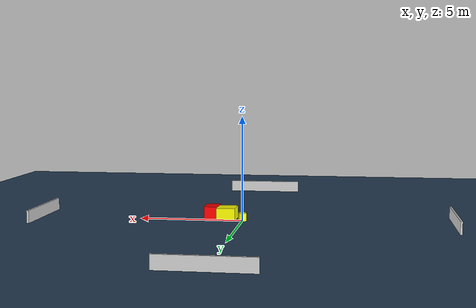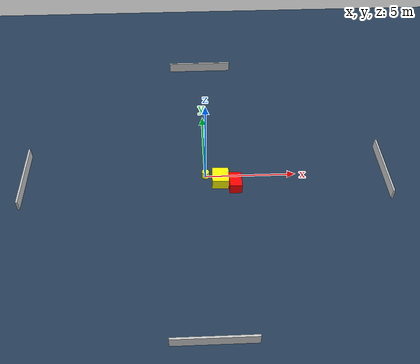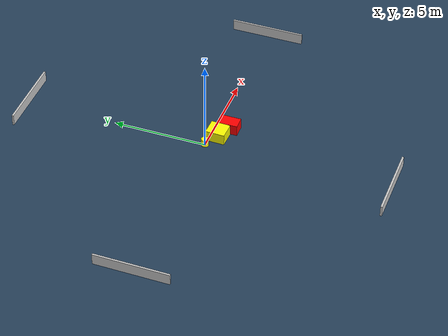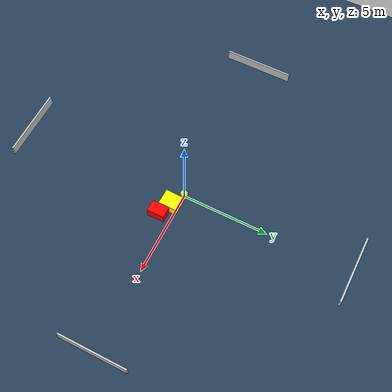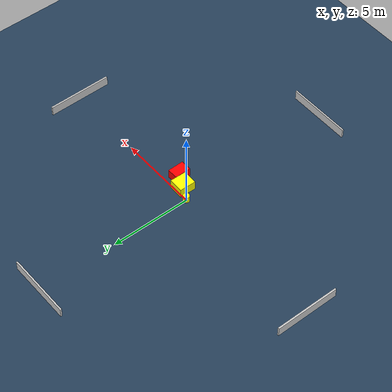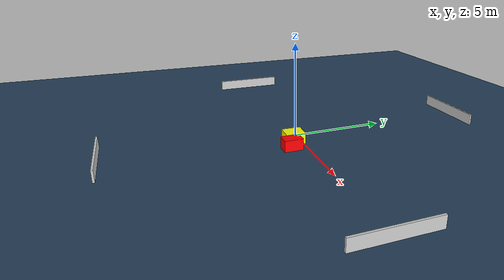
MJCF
<?xml version="1.0" ?>
<mujoco model="generated_environment">
  <option timestep="0.01" integrator="RK4" cone="elliptic"/>
  <default>
    <geom density="1"/>
  </default>
  <asset>
    <texture builtin="gradient" height="3072" name="skybox" rgb1="0.3 0.5 0.7" rgb2="0 0 0" type="skybox" width="512"/>
    <texture builtin="checker" height="300" name="groundplane" rgb1="0.2 0.3 0.4" rgb2="0.1 0.2 0.3" type="2d" width="300"/>
    <material name="groundplane" reflectance="0.2" texrepeat="5 5" texture="groundplane"/>
  </asset>
  <worldbody>
    <light dir="0 0 -1" directional="true" pos="0 0 1.5"/>
    <geom condim="3" friction="0.5 0.005 0.001" material="groundplane" name="floor" pos="0 0 0" size="0 0 0.05" type="plane"/>
    <body name="walls">
      <geom name="wall_1" condim="4" pos="-10.0 0.0 0.3" rgba="0.800000011920929 0.800000011920929 0.800000011920929 1.0" size="0.05 2.0 0.3" type="box"/>
      <geom name="wall_2" condim="4" pos="10.0 0.0 0.3" rgba="0.800000011920929 0.800000011920929 0.800000011920929 1.0" size="0.05 2.0 0.3" type="box"/>
      <geom name="wall_3" condim="4" pos="0.0 -10.0 0.3" rgba="0.800000011920929 0.800000011920929 0.800000011920929 1.0" size="2.0 0.05 0.3" type="box"/>
      <geom name="wall_4" condim="4" pos="0.0 10.0 0.3" rgba="0.800000011920929 0.800000011920929 0.800000011920929 1.0" size="2.0 0.05 0.3" type="box"/>
    </body>
    <body name="robot">
      <joint name="joint_x" type="slide" pos="0 0 0" axis="1 0 0"/>
      <joint name="joint_y" type="slide" pos="0 0 0" axis="0 1 0"/>
      <geom name="robot" type="cylinder" pos="0.0 0.0 0.2" size="0.2 0.2 0.0" mass="5.0" friction="1.0 0.005 0.0001" condim="4" rgba="1.0 1.0 0.0 1.0"/>
    </body>
    <body name="obstacle_1_movable">
      <geom name="obstacle_1_movable" condim="4" pos="0.8021131994852443 -0.41264189038543186 0.3" euler="0 0 178.52579865955437" friction="0.0 0.005 0.001" rgba="1.0 1.0 0.0 1.0" size="0.4519312446823082 0.5134219528858974 0.3" type="box" mass="0.1"/>
      <joint type="free"/>
    </body>
    <body name="obstacle_2_static">
      <geom name="obstacle_2_static" condim="4" pos="1.601380572928486 -0.7888604322721996 0.3" euler="0 0 270.47113735822626" friction="0.0 0.005 0.001" rgba="1.0 0.0 0.0 1.0" size="0.4997413301660913 0.33722231602119856 0.3" type="box"/>
    </body>
  </worldbody>
  <actuator>
    <motor name="actuator_x" joint="joint_x" gear="1" ctrlrange="-1 1"/>
    <motor name="actuator_y" joint="joint_y" gear="1" ctrlrange="-1 1"/>
  </actuator>
</mujoco>
